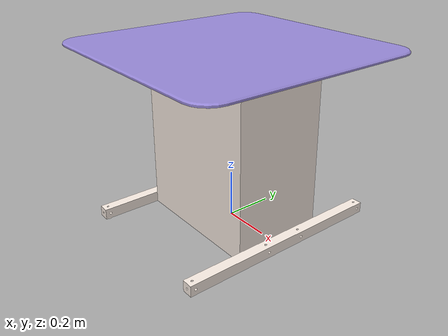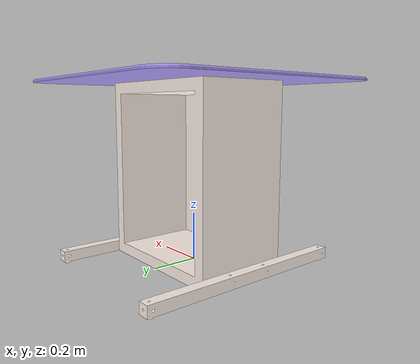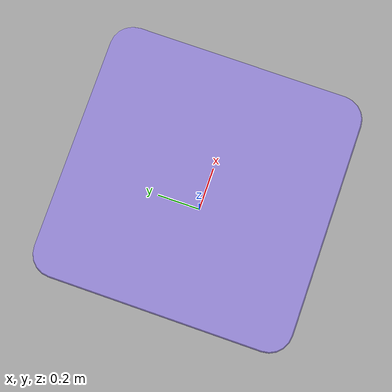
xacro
<?xml version="1.0" ?>

<robot
  name="robot_stand" xmlns:xacro="http://ros.org/wiki/xacro">
  <link
    name="stand_link">
    <inertial>
      <origin
        xyz="-5.6091E-05 -0.011295 0.45916"
        rpy="0 0 0" />
      <mass
        value="49.067" />
      <inertia
        ixx="4.7978"
        ixy="0.00040602"
        ixz="-0.0016412"
        iyy="5.645"
        iyz="-0.070732"
        izz="3.9917" />
    </inertial>
    <visual>
      <origin
        xyz="0 0 0"
        rpy="0 0 0" />
      <geometry>
        <mesh
          filename="package://sr_description_common/meshes/stand_link.stl" />
      </geometry>
      <material
        name="">
        <color
          rgba="1 0.94902 0.9098 1" />
      </material>
    </visual>
    <collision>
      <origin
        xyz="0 0 0"
        rpy="0 0 0" />
      <geometry>
        <mesh
          filename="package://sr_description_common/meshes/stand_link.stl" />
      </geometry>
    </collision>
  </link>
  <link
    name="table_link">
    <inertial>
      <origin
        xyz="0.00024634 -0.00054756 -0.0060317"
        rpy="0 0 0" />
      <mass
        value="11.011" />
      <inertia
        ixx="0.75436"
        ixy="4.941E-05"
        ixz="1.4939E-06"
        iyy="0.75753"
        iyz="1.0588E-06"
        izz="1.5119" />
    </inertial>
    <visual>
      <origin
        xyz="0 0 0"
        rpy="0 0 0" />
      <geometry>
        <mesh
          filename="package://sr_description_common/meshes/table_link.stl" />
      </geometry>
      <material
        name="">
        <color
          rgba="0.6 0.54118 0.85882 1" />
      </material>
    </visual>
    <collision>
      <origin
        xyz="0 0 0"
        rpy="0 0 0" />
      <geometry>
        <mesh
          filename="package://sr_description_common/meshes/table_link.stl" />
      </geometry>
    </collision>
  </link>
  <joint
    name="table_fixed_joint"
    type="fixed">
    <origin
      xyz="0.00010408 0.00010408 0.752"
      rpy="3.8159E-16 0 0" />
    <parent
      link="stand_link" />
    <child
      link="table_link" />
    <axis
      xyz="0 0 0" />
  </joint>
</robot>
